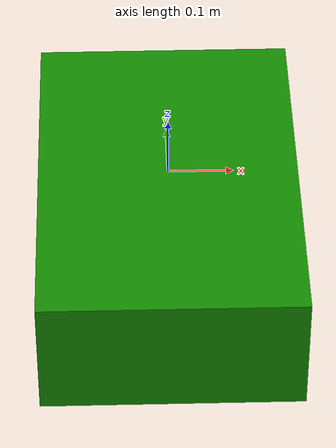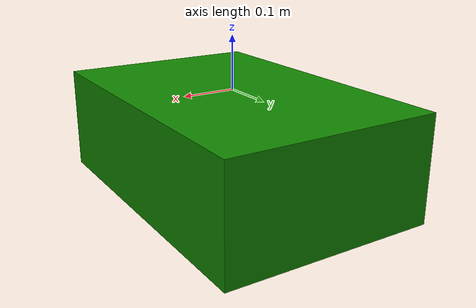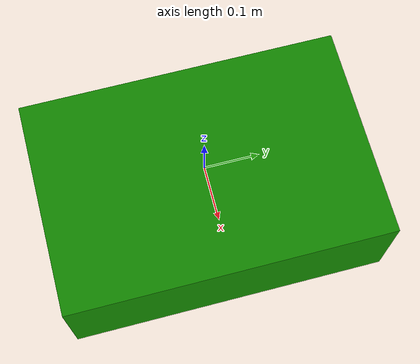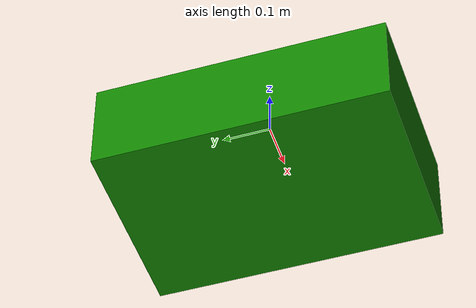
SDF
<?xml version="1.0" ?>
<sdf version="1.5">
  <model name="boxOnTable">
    <static>true</static>
    <link name="link">
      <pose>0 0 -0.1 0 0 0</pose>
      <inertial>
        <mass>1.312</mass>
        <inertia>
          <ixx>0.000874666666667</ixx>
          <ixy>0</ixy>
          <ixz>0</ixz>
          <iyy>0.00126826666667</iyy>
          <iyz>0</iyz>
          <izz>0.00179306666667</izz>
        </inertia>
      </inertial>

      <collision name="collision">
        <geometry>
          <box>
            <size>0.4 0.6 0.2</size>
          </box>
        </geometry>
        <surface>
          <contact>
            <ode>
              <max_vel>0.1</max_vel>
              <min_depth>0.001</min_depth>
              <soft_erp>0.5</soft_erp>
              <soft_cfm>0.001</soft_cfm>
            </ode>
          </contact>
          <friction>
            <ode>
              <mu>10000.0</mu>
              <mu2>10000.0</mu2>
            </ode>
          </friction>
        </surface>
      </collision>

      <visual name="visual">
        <geometry>
          <box>
            <size>0.4 0.6 0.2</size>
          </box>
        </geometry>
        <material>
          <ambient>0.07 0.53 0 1</ambient>
          <diffuse>0.07 0.53 0 1</diffuse>
          <specular>0.1 0.1 0.1 1</specular>
          <emissive>0 0 0 0</emissive>
        </material>
      </visual>

    </link>
  </model>
</sdf>
